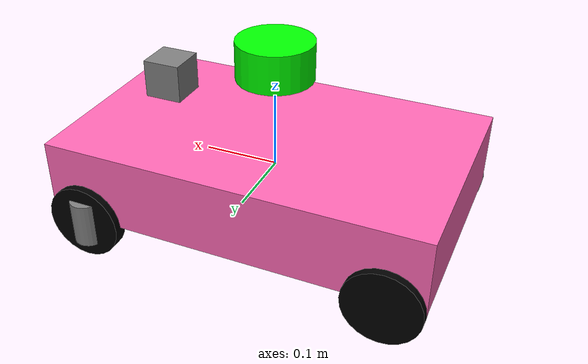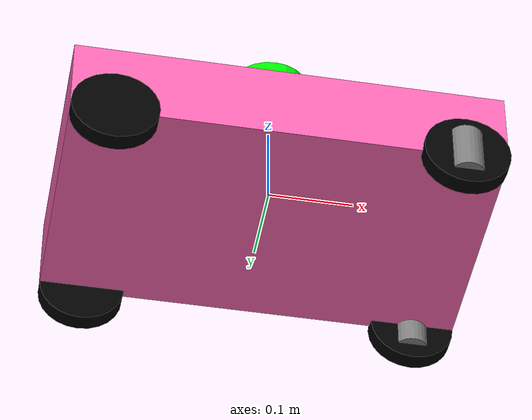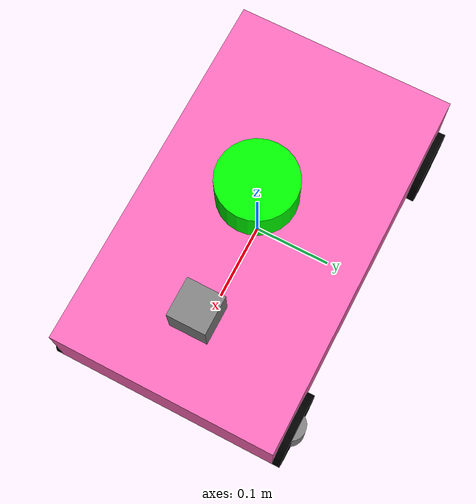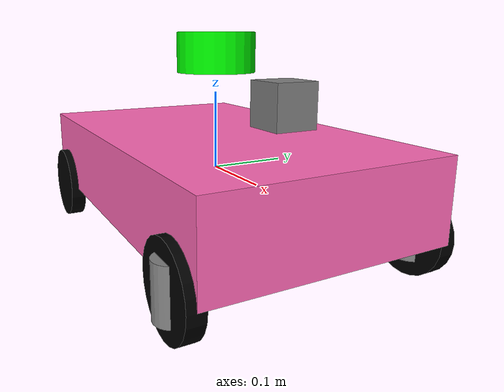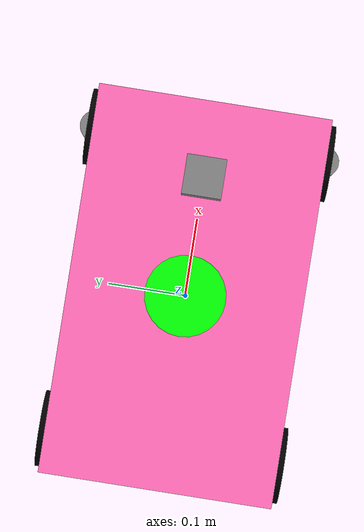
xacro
<?xml version="1.0"?>
<robot name="four_wheel_car" xmlns:xacro="http://ros.org/wiki/xacro">

  <!-- Materials -->
  <material name="pink">
    <color rgba="1 0.41 0.71 1"/>
  </material>
  <material name="green">
    <color rgba="0 1 0 1"/>
  </material>
  <material name="grey">
    <color rgba="0.5 0.5 0.5 1"/>
  </material>
  <material name="black">
    <color rgba="0 0 0 1"/>
  </material>

  <!-- Chassis -->
  <link name="base_link">
    <visual>
      <geometry>
        <box size="0.5 0.3 0.1"/>
      </geometry>
      <material name="pink"/>
    </visual>
    <collision>
      <geometry>
        <box size="0.5 0.3 0.1"/>
      </geometry>
    </collision>
    <inertial>
      <mass value="5.0"/>
      <inertia ixx="0.1" ixy="0.0" ixz="0.0"
               iyy="0.1" iyz="0.0"
               izz="0.1"/>
    </inertial>
  </link>

  <!-- Front Wheel Macro -->
  <xacro:macro name="front_wheel" params="name x y z">
    <!-- Steering link -->
    <link name="${name}_steering_link">
      <visual>
        <geometry>
          <cylinder radius="0.02" length="0.06"/>
        </geometry>
        <material name="grey"/>
      </visual>
      <collision>
        <geometry>
          <cylinder radius="0.02" length="0.06"/>
        </geometry>
      </collision>
      <inertial>
        <mass value="0.05"/>
        <inertia ixx="0.0001" ixy="0.0" ixz="0.0"
                 iyy="0.0001" iyz="0.0"
                 izz="0.0001"/>
      </inertial>
    </link>

    <!-- Steering joint -->
    <joint name="${name}_steering_joint" type="revolute">
      <parent link="base_link"/>
      <child link="${name}_steering_link"/>
      <origin xyz="${x} ${y} ${z}" rpy="0 0 0"/>
      <axis xyz="0 0 1"/>
      <limit lower="-0.785" upper="0.785" effort="1" velocity="1"/>
    </joint>

    <!-- Wheel link -->
    <link name="${name}">
      <visual>
        <origin rpy="1.5708 0 0" xyz="0 0 0"/>
        <geometry>
          <cylinder radius="0.05" length="0.02"/>
        </geometry>
        <material name="black"/>
      </visual>
      <collision>
        <origin rpy="1.5708 0 0" xyz="0 0 0"/>
        <geometry>
          <cylinder radius="0.05" length="0.02"/>
        </geometry>
      </collision>
      <inertial>
        <mass value="0.2"/>
        <inertia ixx="0.001" ixy="0.0" ixz="0.0"
                 iyy="0.001" iyz="0.0"
                 izz="0.001"/>
      </inertial>
    </link>

    <!-- Wheel joint -->
    <joint name="${name}_joint" type="continuous">
      <parent link="${name}_steering_link"/>
      <child link="${name}"/>
      <origin xyz="0 0 0" rpy="0 0 0"/>
      <axis xyz="0 1 0"/>
    </joint>
  </xacro:macro>

  <!-- Rear Wheel Macro -->
  <xacro:macro name="rear_wheel" params="name x y z">
    <link name="${name}">
      <visual>
        <origin rpy="1.5708 0 0" xyz="0 0 0"/>
        <geometry>
          <cylinder radius="0.05" length="0.02"/>
        </geometry>
        <material name="black"/>
      </visual>
      <collision>
        <origin rpy="1.5708 0 0" xyz="0 0 0"/>
        <geometry>
          <cylinder radius="0.05" length="0.02"/>
        </geometry>
      </collision>
      <inertial>
        <mass value="0.2"/>
        <inertia ixx="0.001" ixy="0.0" ixz="0.0"
                 iyy="0.001" iyz="0.0"
                 izz="0.001"/>
      </inertial>
    </link>

    <joint name="${name}_joint" type="continuous">
      <parent link="base_link"/>
      <child link="${name}"/>
      <origin xyz="${x} ${y} ${z}" rpy="0 0 0"/>
      <axis xyz="0 1 0"/>
    </joint>
  </xacro:macro>

  <!-- Instantiate Wheels -->
  <xacro:front_wheel name="front_left_wheel"  x="0.2"  y="0.15" z="-0.05"/>
  <xacro:front_wheel name="front_right_wheel" x="0.2"  y="-0.15" z="-0.05"/>
  <xacro:rear_wheel name="rear_left_wheel"   x="-0.2" y="0.15" z="-0.05"/>
  <xacro:rear_wheel name="rear_right_wheel"  x="-0.2" y="-0.15" z="-0.05"/>

  <!-- LiDAR -->
  <link name="lidar_link">
    <visual>
      <geometry>
        <cylinder length="0.05" radius="0.05"/>
      </geometry>
      <material name="green"/>
    </visual>
  </link>
  <joint name="lidar_joint" type="fixed">
    <parent link="base_link"/>
    <child link="lidar_link"/>
    <origin xyz="0.0 0 0.15" rpy="0 0 0"/>
  </joint>
  <gazebo reference="lidar_link">
    <sensor name="lidar" type="ray">
      <update_rate>10</update_rate>
      <ray>
        <scan>
          <horizontal>
            <samples>720</samples>
            <resolution>1</resolution>
            <min_angle>-1.57</min_angle>
            <max_angle>1.57</max_angle>
          </horizontal>
        </scan>
        <range>
          <min>0.12</min>
          <max>12.0</max>
          <resolution>0.01</resolution>
        </range>
        <noise>
          <type>gaussian</type>
          <mean>0.0</mean>
          <stddev>0.01</stddev>
        </noise>
      </ray>
      <plugin name="gazebo_ros_laser_controller" filename="libgazebo_ros_ray_sensor.so">
        <ros>
          <remapping>scan:=/scan</remapping>
        </ros>
        <output_type>sensor_msgs/LaserScan</output_type>
      </plugin>
    </sensor>
  </gazebo>

  <!-- Camera -->
  <link name="camera_link">
    <visual>
      <geometry>
        <box size="0.05 0.05 0.05"/>
      </geometry>
      <material name="grey"/>
    </visual>
  </link>
  <joint name="camera_joint" type="fixed">
    <parent link="base_link"/>
    <child link="camera_link"/>
    <origin xyz="0.15 0 0.1" rpy="0 0 0"/>
  </joint>
  <gazebo reference="camera_link">
    <sensor name="camera" type="camera">
      <camera>
        <horizontal_fov>1.047</horizontal_fov>
        <image>
          <width>640</width>
          <height>480</height>
          <format>R8G8B8</format>
        </image>
        <clip>
          <near>0.1</near>
          <far>10.0</far>
        </clip>
      </camera>
      <plugin name="gazebo_ros_camera" filename="libgazebo_ros_camera.so">
        <ros>
          <namespace>/</namespace>
          <remapping>image_raw:=/camera/image_raw</remapping>
          <remapping>camera_info:=/camera/camera_info</remapping>
        </ros>
      </plugin>
    </sensor>
  </gazebo>

  <!-- Differential Drive Plugin -->
  <gazebo>
    <plugin name="diff_drive" filename="libgazebo_ros_diff_drive.so">
      <ros>
        <namespace>/</namespace>
        <remapping>cmd_vel:=/cmd_vel</remapping>
        <remapping>odom:=/odom</remapping>
      </ros>
      <update_rate>50</update_rate>
      <left_joint>rear_left_wheel_joint</left_joint>
      <right_joint>rear_right_wheel_joint</right_joint>
      <wheel_separation>0.3</wheel_separation>
      <wheel_diameter>0.1</wheel_diameter>
      <odom_frame>odom</odom_frame>
      <base_frame>base_link</base_frame>
      <publish_odom>true</publish_odom>
      <publish_odom_tf>true</publish_odom_tf>
    </plugin>
  </gazebo>

</robot>
